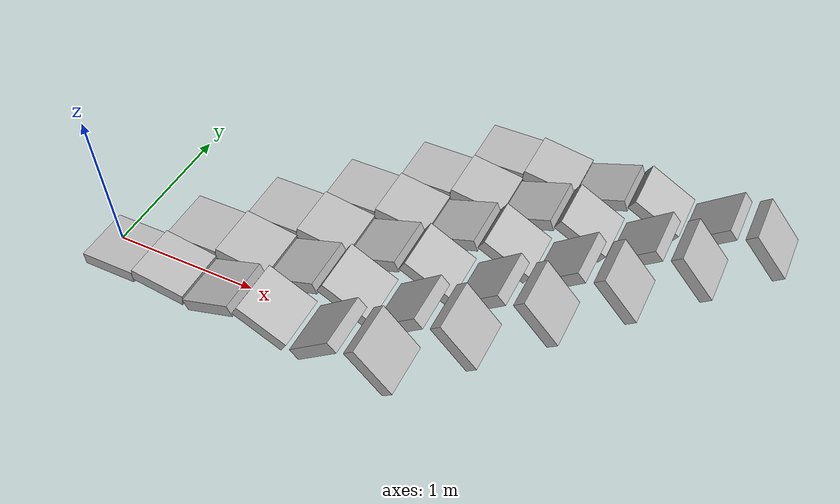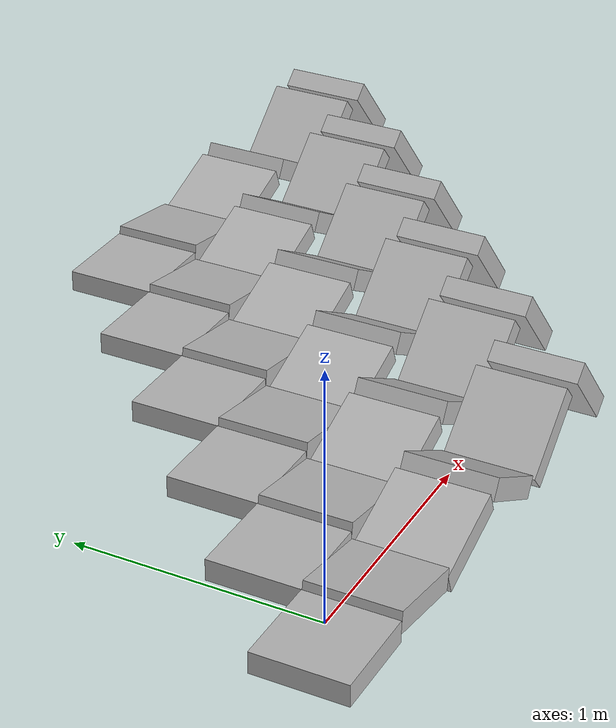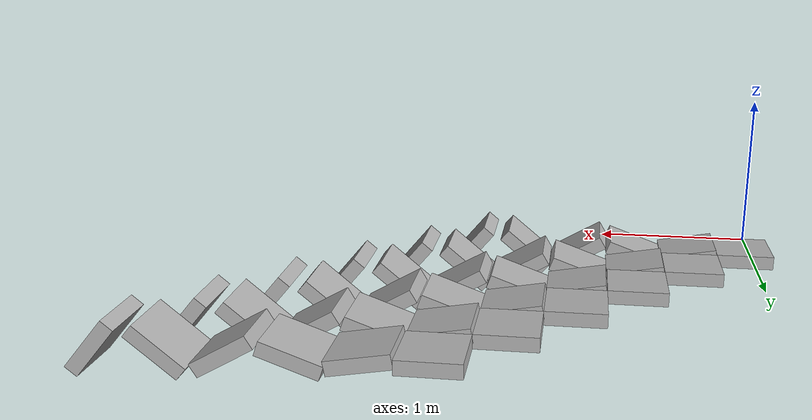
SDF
<?xml version="1.0" ?>
<sdf version="1.4">

  <model name="block_angle_base">
    <static>true</static>
    <pose>0 0 0 0 0 0</pose>

          <include>
            <name>"block_0_0"</name>
            <pose> 0.0 0.0 -0.101075 -0.0 0 1.570796 </pose>
            <uri>model://cinder_block_wide</uri>
          </include>

          <include>
            <name>"block_0_1"</name>
            <pose> 0.387353556 0.0 -0.101075 0.17453292519943295 0 1.570796 </pose>
            <uri>model://cinder_block_wide</uri>
          </include>

          <include>
            <name>"block_0_2"</name>
            <pose> 0.774707112 0.0 -0.101075 -0.3490658503988659 0 1.570796 </pose>
            <uri>model://cinder_block_wide</uri>
          </include>

          <include>
            <name>"block_0_3"</name>
            <pose> 1.162060668 0.0 -0.101075 0.5235987755982988 0 1.570796 </pose>
            <uri>model://cinder_block_wide</uri>
          </include>

          <include>
            <name>"block_0_4"</name>
            <pose> 1.549414224 0.0 -0.101075 -0.6981317007977318 0 1.570796 </pose>
            <uri>model://cinder_block_wide</uri>
          </include>

          <include>
            <name>"block_0_5"</name>
            <pose> 1.9367677799999998 0.0 -0.101075 0.8726646259971648 0 1.570796 </pose>
            <uri>model://cinder_block_wide</uri>
          </include>

          <include>
            <name>"block_1_0"</name>
            <pose> 0.387353556 0.387353556 -0.101075 -0.0 0 1.570796 </pose>
            <uri>model://cinder_block_wide</uri>
          </include>

          <include>
            <name>"block_1_1"</name>
            <pose> 0.774707112 0.387353556 -0.101075 0.17453292519943295 0 1.570796 </pose>
            <uri>model://cinder_block_wide</uri>
          </include>

          <include>
            <name>"block_1_2"</name>
            <pose> 1.162060668 0.387353556 -0.101075 -0.3490658503988659 0 1.570796 </pose>
            <uri>model://cinder_block_wide</uri>
          </include>

          <include>
            <name>"block_1_3"</name>
            <pose> 1.549414224 0.387353556 -0.101075 0.5235987755982988 0 1.570796 </pose>
            <uri>model://cinder_block_wide</uri>
          </include>

          <include>
            <name>"block_1_4"</name>
            <pose> 1.9367677799999998 0.387353556 -0.101075 -0.6981317007977318 0 1.570796 </pose>
            <uri>model://cinder_block_wide</uri>
          </include>

          <include>
            <name>"block_1_5"</name>
            <pose> 2.3241213359999997 0.387353556 -0.101075 0.8726646259971648 0 1.570796 </pose>
            <uri>model://cinder_block_wide</uri>
          </include>

          <include>
            <name>"block_2_0"</name>
            <pose> 0.774707112 0.774707112 -0.101075 -0.0 0 1.570796 </pose>
            <uri>model://cinder_block_wide</uri>
          </include>

          <include>
            <name>"block_2_1"</name>
            <pose> 1.162060668 0.774707112 -0.101075 0.17453292519943295 0 1.570796 </pose>
            <uri>model://cinder_block_wide</uri>
          </include>

          <include>
            <name>"block_2_2"</name>
            <pose> 1.549414224 0.774707112 -0.101075 -0.3490658503988659 0 1.570796 </pose>
            <uri>model://cinder_block_wide</uri>
          </include>

          <include>
            <name>"block_2_3"</name>
            <pose> 1.93676778 0.774707112 -0.101075 0.5235987755982988 0 1.570796 </pose>
            <uri>model://cinder_block_wide</uri>
          </include>

          <include>
            <name>"block_2_4"</name>
            <pose> 2.324121336 0.774707112 -0.101075 -0.6981317007977318 0 1.570796 </pose>
            <uri>model://cinder_block_wide</uri>
          </include>

          <include>
            <name>"block_2_5"</name>
            <pose> 2.711474892 0.774707112 -0.101075 0.8726646259971648 0 1.570796 </pose>
            <uri>model://cinder_block_wide</uri>
          </include>

          <include>
            <name>"block_3_0"</name>
            <pose> 1.162060668 1.162060668 -0.101075 -0.0 0 1.570796 </pose>
            <uri>model://cinder_block_wide</uri>
          </include>

          <include>
            <name>"block_3_1"</name>
            <pose> 1.549414224 1.162060668 -0.101075 0.17453292519943295 0 1.570796 </pose>
            <uri>model://cinder_block_wide</uri>
          </include>

          <include>
            <name>"block_3_2"</name>
            <pose> 1.93676778 1.162060668 -0.101075 -0.3490658503988659 0 1.570796 </pose>
            <uri>model://cinder_block_wide</uri>
          </include>

          <include>
            <name>"block_3_3"</name>
            <pose> 2.324121336 1.162060668 -0.101075 0.5235987755982988 0 1.570796 </pose>
            <uri>model://cinder_block_wide</uri>
          </include>

          <include>
            <name>"block_3_4"</name>
            <pose> 2.711474892 1.162060668 -0.101075 -0.6981317007977318 0 1.570796 </pose>
            <uri>model://cinder_block_wide</uri>
          </include>

          <include>
            <name>"block_3_5"</name>
            <pose> 3.098828448 1.162060668 -0.101075 0.8726646259971648 0 1.570796 </pose>
            <uri>model://cinder_block_wide</uri>
          </include>

          <include>
            <name>"block_4_0"</name>
            <pose> 1.549414224 1.549414224 -0.101075 -0.0 0 1.570796 </pose>
            <uri>model://cinder_block_wide</uri>
          </include>

          <include>
            <name>"block_4_1"</name>
            <pose> 1.9367677799999998 1.549414224 -0.101075 0.17453292519943295 0 1.570796 </pose>
            <uri>model://cinder_block_wide</uri>
          </include>

          <include>
            <name>"block_4_2"</name>
            <pose> 2.324121336 1.549414224 -0.101075 -0.3490658503988659 0 1.570796 </pose>
            <uri>model://cinder_block_wide</uri>
          </include>

          <include>
            <name>"block_4_3"</name>
            <pose> 2.711474892 1.549414224 -0.101075 0.5235987755982988 0 1.570796 </pose>
            <uri>model://cinder_block_wide</uri>
          </include>

          <include>
            <name>"block_4_4"</name>
            <pose> 3.098828448 1.549414224 -0.101075 -0.6981317007977318 0 1.570796 </pose>
            <uri>model://cinder_block_wide</uri>
          </include>

          <include>
            <name>"block_4_5"</name>
            <pose> 3.486182004 1.549414224 -0.101075 0.8726646259971648 0 1.570796 </pose>
            <uri>model://cinder_block_wide</uri>
          </include>

          <include>
            <name>"block_5_0"</name>
            <pose> 1.9367677799999998 1.9367677799999998 -0.101075 -0.0 0 1.570796 </pose>
            <uri>model://cinder_block_wide</uri>
          </include>

          <include>
            <name>"block_5_1"</name>
            <pose> 2.3241213359999997 1.9367677799999998 -0.101075 0.17453292519943295 0 1.570796 </pose>
            <uri>model://cinder_block_wide</uri>
          </include>

          <include>
            <name>"block_5_2"</name>
            <pose> 2.711474892 1.9367677799999998 -0.101075 -0.3490658503988659 0 1.570796 </pose>
            <uri>model://cinder_block_wide</uri>
          </include>

          <include>
            <name>"block_5_3"</name>
            <pose> 3.098828448 1.9367677799999998 -0.101075 0.5235987755982988 0 1.570796 </pose>
            <uri>model://cinder_block_wide</uri>
          </include>

          <include>
            <name>"block_5_4"</name>
            <pose> 3.486182004 1.9367677799999998 -0.101075 -0.6981317007977318 0 1.570796 </pose>
            <uri>model://cinder_block_wide</uri>
          </include>

          <include>
            <name>"block_5_5"</name>
            <pose> 3.8735355599999997 1.9367677799999998 -0.101075 0.8726646259971648 0 1.570796 </pose>
            <uri>model://cinder_block_wide</uri>
          </include>

  </model>

</sdf>

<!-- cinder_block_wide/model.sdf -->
<sdf version="1.5">
  <model name="cinder_block_wide">
    <link name="link">
      <inertial>
        <pose>0 0 0.0714375 0 0 0</pose>
        <mass>5</mass>
        <!-- approximate as uniform box 0.387 x 0.387 x 0.092 m -->
        <inertia>
          <ixx>0.06814656666666667</ixx>
          <ixy>0.0000</ixy>
          <iyy>0.06814656666666667</iyy>
          <ixz>0.0000</ixz>
          <iyz>0.0000</iyz>
          <izz>0.1248075</izz>
        </inertia>
      </inertial>
      <visual name="visual">
        <geometry>

          <box>
            <size>0.387353556 0.387353556 0.092075</size>
          </box>
        </geometry>
      </visual>

      <collision name="block_collision">
       <pose>0 0 0 0 0 0</pose>
        <geometry>
          <box>
            <size>0.387353556 0.387353556 0.092075</size>
          </box>
        </geometry>
        <surface>
          <contact>
            <ode>
              <max_vel>0.1</max_vel>
              <min_depth>0.001</min_depth>
            </ode>
          </contact>
          <friction>
            <ode>
              <mu>1.0</mu>
              <mu2>1.0</mu2>
            </ode>
          </friction>
        </surface>

      </collision>

    </link>
  </model>
</sdf>
